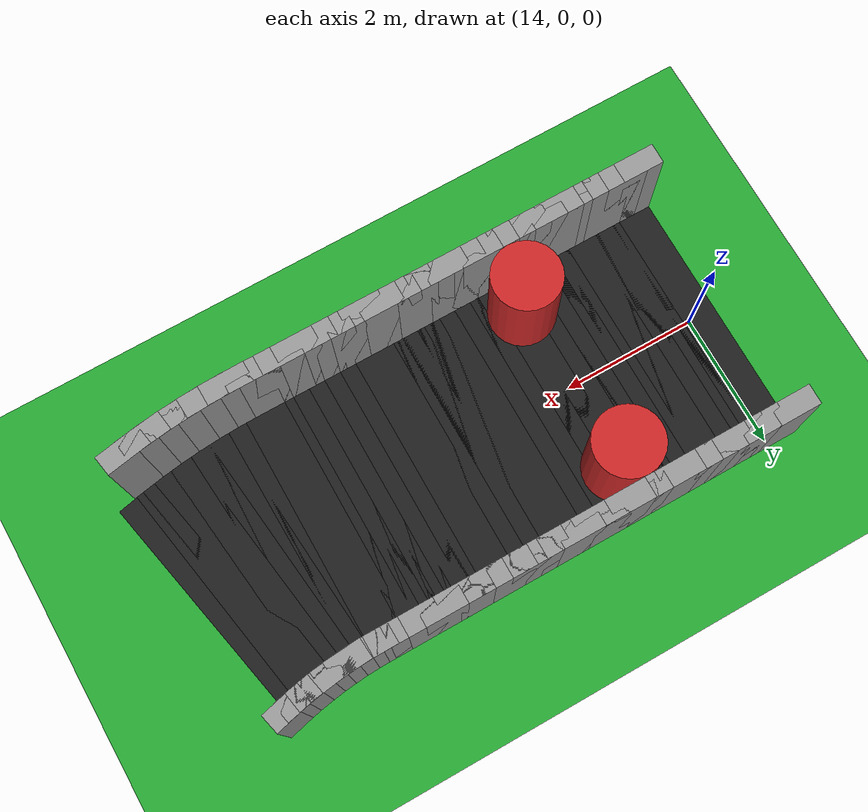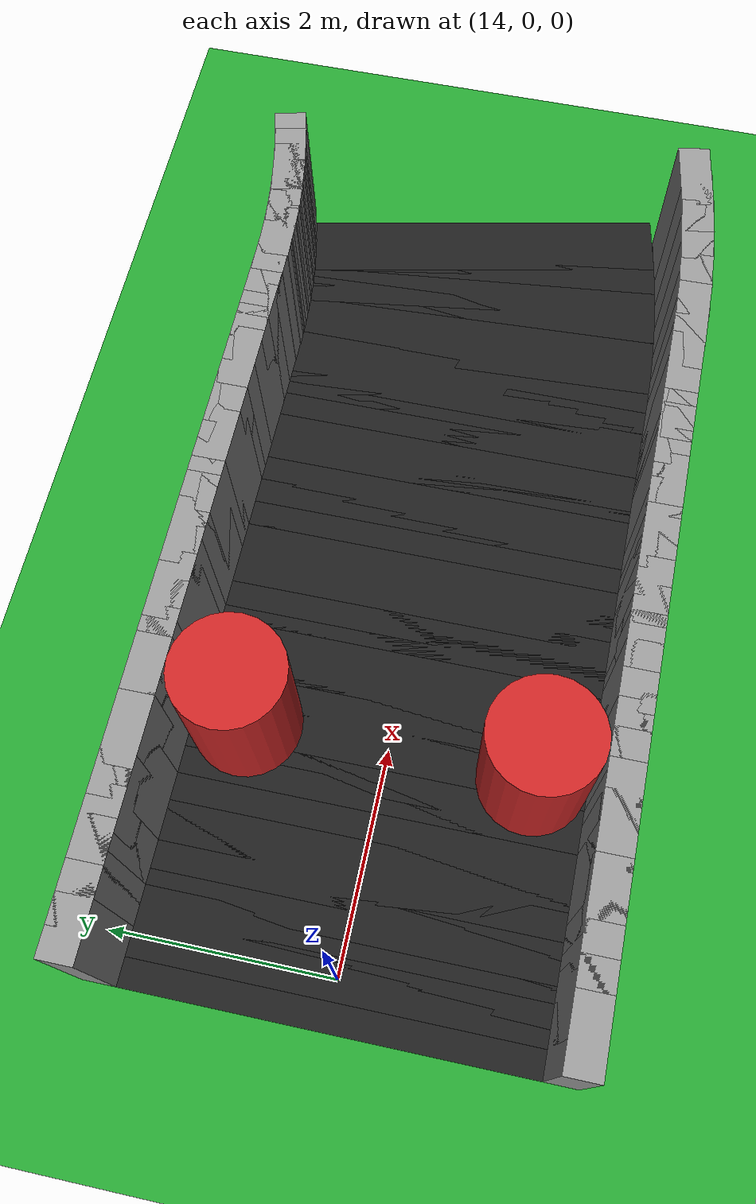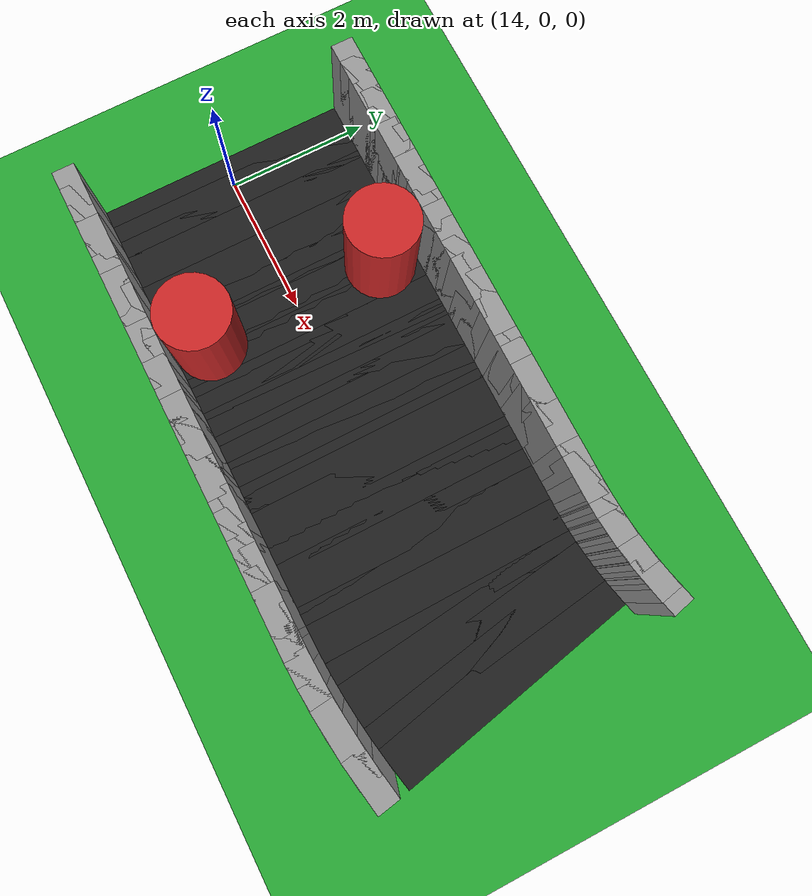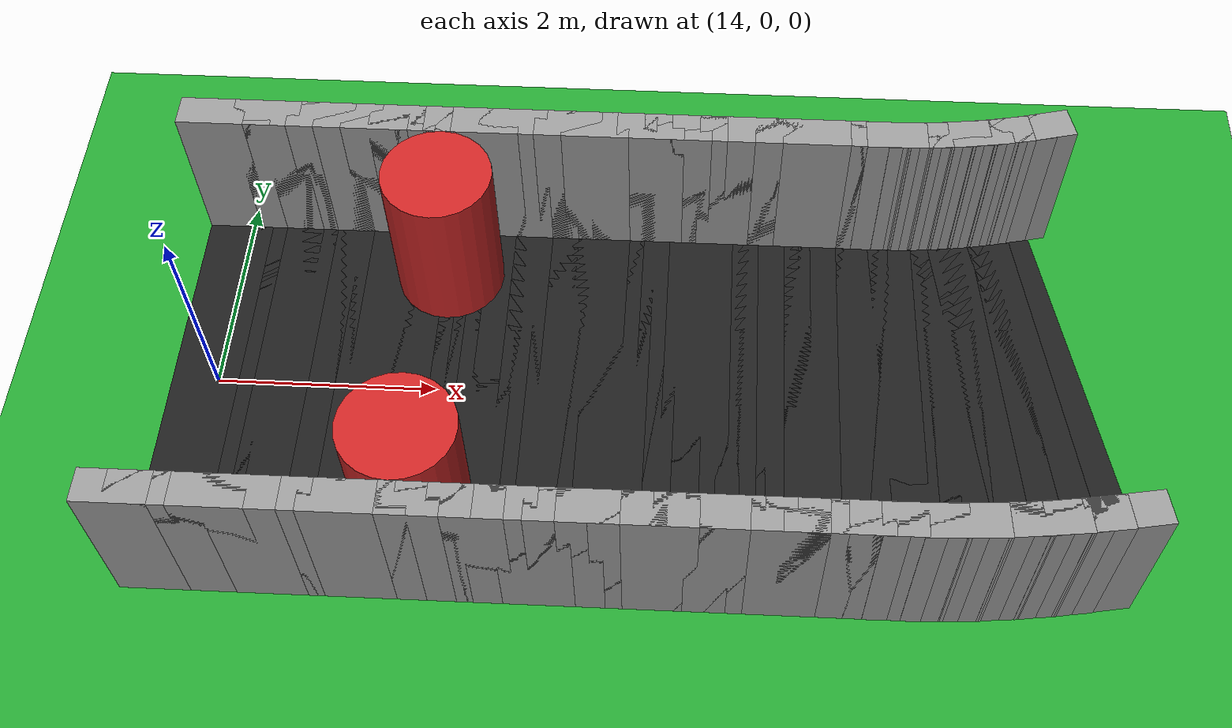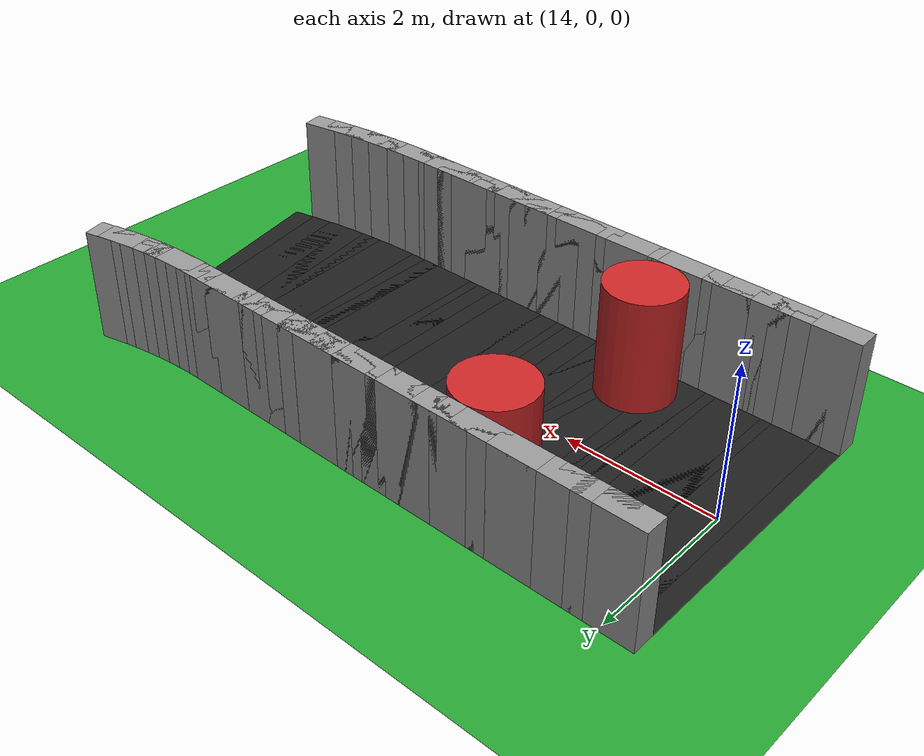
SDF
<sdf version="1.6">
 <world name="obstacle_tight">
  <include><uri>model://sun</uri></include>
  <model name="ground_plane">
   <static>true</static>
   <link name="link">
    <collision name="collision">
     <surface><friction><ode><mu>100</mu><mu2>50</mu2></ode></friction></surface>
     <geometry><plane><normal>0 0 1</normal><size>120 120</size></plane></geometry>
    </collision>
    <visual name="visual">
     <geometry><plane><normal>0 0 1</normal><size>120 120</size></plane></geometry>
     <material>
      <script><uri>file://media/materials/scripts/gazebo.material</uri><name>Gazebo/Green</name></script>
     </material>
    </visual>
   </link>
  </model>
  <model name="asphalt_55">
   <static>true</static>
   <pose>13.875 0.000 0.005 0 0 0.00000</pose>
   <link name="link">
    <visual name="visual">
     <geometry><box><size>0.610 3.600 0.010</size></box></geometry>
     <material>
      <script><uri>file://media/materials/scripts/gazebo.material</uri><name>Gazebo/Black</name></script>
     </material>
    </visual>
   </link>
  </model>
  <model name="curbL_55">
   <static>true</static>
   <pose>13.875 1.950 0.750 0 0 0.00000</pose>
   <link name="link">
    <collision name="collision"><geometry><box><size>0.610 0.300 1.500</size></box></geometry></collision>
    <visual name="visual">
     <geometry><box><size>0.610 0.300 1.500</size></box></geometry>
     <material>
      <script><uri>file://media/materials/scripts/gazebo.material</uri><name>Gazebo/Grey</name></script>
     </material>
    </visual>
   </link>
  </model>
  <model name="curbR_55">
   <static>true</static>
   <pose>13.875 -1.950 0.750 0 0 0.00000</pose>
   <link name="link">
    <collision name="collision"><geometry><box><size>0.610 0.300 1.500</size></box></geometry></collision>
    <visual name="visual">
     <geometry><box><size>0.610 0.300 1.500</size></box></geometry>
     <material>
      <script><uri>file://media/materials/scripts/gazebo.material</uri><name>Gazebo/Grey</name></script>
     </material>
    </visual>
   </link>
  </model>
  <model name="asphalt_56">
   <static>true</static>
   <pose>14.125 0.000 0.005 0 0 0.00000</pose>
   <link name="link">
    <visual name="visual">
     <geometry><box><size>0.610 3.600 0.010</size></box></geometry>
     <material>
      <script><uri>file://media/materials/scripts/gazebo.material</uri><name>Gazebo/Black</name></script>
     </material>
    </visual>
   </link>
  </model>
  <model name="curbL_56">
   <static>true</static>
   <pose>14.125 1.950 0.750 0 0 0.00000</pose>
   <link name="link">
    <collision name="collision"><geometry><box><size>0.610 0.300 1.500</size></box></geometry></collision>
    <visual name="visual">
     <geometry><box><size>0.610 0.300 1.500</size></box></geometry>
     <material>
      <script><uri>file://media/materials/scripts/gazebo.material</uri><name>Gazebo/Grey</name></script>
     </material>
    </visual>
   </link>
  </model>
  <model name="curbR_56">
   <static>true</static>
   <pose>14.125 -1.950 0.750 0 0 0.00000</pose>
   <link name="link">
    <collision name="collision"><geometry><box><size>0.610 0.300 1.500</size></box></geometry></collision>
    <visual name="visual">
     <geometry><box><size>0.610 0.300 1.500</size></box></geometry>
     <material>
      <script><uri>file://media/materials/scripts/gazebo.material</uri><name>Gazebo/Grey</name></script>
     </material>
    </visual>
   </link>
  </model>
  <model name="asphalt_57">
   <static>true</static>
   <pose>14.375 0.000 0.005 0 0 0.00000</pose>
   <link name="link">
    <visual name="visual">
     <geometry><box><size>0.610 3.600 0.010</size></box></geometry>
     <material>
      <script><uri>file://media/materials/scripts/gazebo.material</uri><name>Gazebo/Black</name></script>
     </material>
    </visual>
   </link>
  </model>
  <model name="curbL_57">
   <static>true</static>
   <pose>14.375 1.950 0.750 0 0 0.00000</pose>
   <link name="link">
    <collision name="collision"><geometry><box><size>0.610 0.300 1.500</size></box></geometry></collision>
    <visual name="visual">
     <geometry><box><size>0.610 0.300 1.500</size></box></geometry>
     <material>
      <script><uri>file://media/materials/scripts/gazebo.material</uri><name>Gazebo/Grey</name></script>
     </material>
    </visual>
   </link>
  </model>
  <model name="curbR_57">
   <static>true</static>
   <pose>14.375 -1.950 0.750 0 0 0.00000</pose>
   <link name="link">
    <collision name="collision"><geometry><box><size>0.610 0.300 1.500</size></box></geometry></collision>
    <visual name="visual">
     <geometry><box><size>0.610 0.300 1.500</size></box></geometry>
     <material>
      <script><uri>file://media/materials/scripts/gazebo.material</uri><name>Gazebo/Grey</name></script>
     </material>
    </visual>
   </link>
  </model>
  <model name="asphalt_58">
   <static>true</static>
   <pose>14.625 0.000 0.005 0 0 0.00000</pose>
   <link name="link">
    <visual name="visual">
     <geometry><box><size>0.610 3.600 0.010</size></box></geometry>
     <material>
      <script><uri>file://media/materials/scripts/gazebo.material</uri><name>Gazebo/Black</name></script>
     </material>
    </visual>
   </link>
  </model>
  <model name="curbL_58">
   <static>true</static>
   <pose>14.625 1.950 0.750 0 0 0.00000</pose>
   <link name="link">
    <collision name="collision"><geometry><box><size>0.610 0.300 1.500</size></box></geometry></collision>
    <visual name="visual">
     <geometry><box><size>0.610 0.300 1.500</size></box></geometry>
     <material>
      <script><uri>file://media/materials/scripts/gazebo.material</uri><name>Gazebo/Grey</name></script>
     </material>
    </visual>
   </link>
  </model>
  <model name="curbR_58">
   <static>true</static>
   <pose>14.625 -1.950 0.750 0 0 0.00000</pose>
   <link name="link">
    <collision name="collision"><geometry><box><size>0.610 0.300 1.500</size></box></geometry></collision>
    <visual name="visual">
     <geometry><box><size>0.610 0.300 1.500</size></box></geometry>
     <material>
      <script><uri>file://media/materials/scripts/gazebo.material</uri><name>Gazebo/Grey</name></script>
     </material>
    </visual>
   </link>
  </model>
  <model name="asphalt_59">
   <static>true</static>
   <pose>14.875 0.000 0.005 0 0 0.00000</pose>
   <link name="link">
    <visual name="visual">
     <geometry><box><size>0.610 3.600 0.010</size></box></geometry>
     <material>
      <script><uri>file://media/materials/scripts/gazebo.material</uri><name>Gazebo/Black</name></script>
     </material>
    </visual>
   </link>
  </model>
  <model name="curbL_59">
   <static>true</static>
   <pose>14.875 1.950 0.750 0 0 0.00000</pose>
   <link name="link">
    <collision name="collision"><geometry><box><size>0.610 0.300 1.500</size></box></geometry></collision>
    <visual name="visual">
     <geometry><box><size>0.610 0.300 1.500</size></box></geometry>
     <material>
      <script><uri>file://media/materials/scripts/gazebo.material</uri><name>Gazebo/Grey</name></script>
     </material>
    </visual>
   </link>
  </model>
  <model name="curbR_59">
   <static>true</static>
   <pose>14.875 -1.950 0.750 0 0 0.00000</pose>
   <link name="link">
    <collision name="collision"><geometry><box><size>0.610 0.300 1.500</size></box></geometry></collision>
    <visual name="visual">
     <geometry><box><size>0.610 0.300 1.500</size></box></geometry>
     <material>
      <script><uri>file://media/materials/scripts/gazebo.material</uri><name>Gazebo/Grey</name></script>
     </material>
    </visual>
   </link>
  </model>
  <model name="asphalt_60">
   <static>true</static>
   <pose>15.125 0.000 0.005 0 0 0.00000</pose>
   <link name="link">
    <visual name="visual">
     <geometry><box><size>0.610 3.600 0.010</size></box></geometry>
     <material>
      <script><uri>file://media/materials/scripts/gazebo.material</uri><name>Gazebo/Black</name></script>
     </material>
    </visual>
   </link>
  </model>
  <model name="curbL_60">
   <static>true</static>
   <pose>15.125 1.950 0.750 0 0 0.00000</pose>
   <link name="link">
    <collision name="collision"><geometry><box><size>0.610 0.300 1.500</size></box></geometry></collision>
    <visual name="visual">
     <geometry><box><size>0.610 0.300 1.500</size></box></geometry>
     <material>
      <script><uri>file://media/materials/scripts/gazebo.material</uri><name>Gazebo/Grey</name></script>
     </material>
    </visual>
   </link>
  </model>
  <model name="curbR_60">
   <static>true</static>
   <pose>15.125 -1.950 0.750 0 0 0.00000</pose>
   <link name="link">
    <collision name="collision"><geometry><box><size>0.610 0.300 1.500</size></box></geometry></collision>
    <visual name="visual">
     <geometry><box><size>0.610 0.300 1.500</size></box></geometry>
     <material>
      <script><uri>file://media/materials/scripts/gazebo.material</uri><name>Gazebo/Grey</name></script>
     </material>
    </visual>
   </link>
  </model>
  <model name="asphalt_61">
   <static>true</static>
   <pose>15.375 0.000 0.005 0 0 0.00000</pose>
   <link name="link">
    <visual name="visual">
     <geometry><box><size>0.610 3.600 0.010</size></box></geometry>
     <material>
      <script><uri>file://media/materials/scripts/gazebo.material</uri><name>Gazebo/Black</name></script>
     </material>
    </visual>
   </link>
  </model>
  <model name="curbL_61">
   <static>true</static>
   <pose>15.375 1.950 0.750 0 0 0.00000</pose>
   <link name="link">
    <collision name="collision"><geometry><box><size>0.610 0.300 1.500</size></box></geometry></collision>
    <visual name="visual">
     <geometry><box><size>0.610 0.300 1.500</size></box></geometry>
     <material>
      <script><uri>file://media/materials/scripts/gazebo.material</uri><name>Gazebo/Grey</name></script>
     </material>
    </visual>
   </link>
  </model>
  <model name="curbR_61">
   <static>true</static>
   <pose>15.375 -1.950 0.750 0 0 0.00000</pose>
   <link name="link">
    <collision name="collision"><geometry><box><size>0.610 0.300 1.500</size></box></geometry></collision>
    <visual name="visual">
     <geometry><box><size>0.610 0.300 1.500</size></box></geometry>
     <material>
      <script><uri>file://media/materials/scripts/gazebo.material</uri><name>Gazebo/Grey</name></script>
     </material>
    </visual>
   </link>
  </model>
  <model name="asphalt_62">
   <static>true</static>
   <pose>15.625 0.000 0.005 0 0 0.00000</pose>
   <link name="link">
    <visual name="visual">
     <geometry><box><size>0.610 3.600 0.010</size></box></geometry>
     <material>
      <script><uri>file://media/materials/scripts/gazebo.material</uri><name>Gazebo/Black</name></script>
     </material>
    </visual>
   </link>
  </model>
  <model name="curbL_62">
   <static>true</static>
   <pose>15.625 1.950 0.750 0 0 0.00000</pose>
   <link name="link">
    <collision name="collision"><geometry><box><size>0.610 0.300 1.500</size></box></geometry></collision>
    <visual name="visual">
     <geometry><box><size>0.610 0.300 1.500</size></box></geometry>
     <material>
      <script><uri>file://media/materials/scripts/gazebo.material</uri><name>Gazebo/Grey</name></script>
     </material>
    </visual>
   </link>
  </model>
  <model name="curbR_62">
   <static>true</static>
   <pose>15.625 -1.950 0.750 0 0 0.00000</pose>
   <link name="link">
    <collision name="collision"><geometry><box><size>0.610 0.300 1.500</size></box></geometry></collision>
    <visual name="visual">
     <geometry><box><size>0.610 0.300 1.500</size></box></geometry>
     <material>
      <script><uri>file://media/materials/scripts/gazebo.material</uri><name>Gazebo/Grey</name></script>
     </material>
    </visual>
   </link>
  </model>
  <model name="asphalt_63">
   <static>true</static>
   <pose>15.875 0.000 0.005 0 0 0.00000</pose>
   <link name="link">
    <visual name="visual">
     <geometry><box><size>0.610 3.600 0.010</size></box></geometry>
     <material>
      <script><uri>file://media/materials/scripts/gazebo.material</uri><name>Gazebo/Black</name></script>
     </material>
    </visual>
   </link>
  </model>
  <model name="curbL_63">
   <static>true</static>
   <pose>15.875 1.950 0.750 0 0 0.00000</pose>
   <link name="link">
    <collision name="collision"><geometry><box><size>0.610 0.300 1.500</size></box></geometry></collision>
    <visual name="visual">
     <geometry><box><size>0.610 0.300 1.500</size></box></geometry>
     <material>
      <script><uri>file://media/materials/scripts/gazebo.material</uri><name>Gazebo/Grey</name></script>
     </material>
    </visual>
   </link>
  </model>
  <model name="curbR_63">
   <static>true</static>
   <pose>15.875 -1.950 0.750 0 0 0.00000</pose>
   <link name="link">
    <collision name="collision"><geometry><box><size>0.610 0.300 1.500</size></box></geometry></collision>
    <visual name="visual">
     <geometry><box><size>0.610 0.300 1.500</size></box></geometry>
     <material>
      <script><uri>file://media/materials/scripts/gazebo.material</uri><name>Gazebo/Grey</name></script>
     </material>
    </visual>
   </link>
  </model>
  <model name="asphalt_64">
   <static>true</static>
   <pose>16.125 0.000 0.005 0 0 0.00000</pose>
   <link name="link">
    <visual name="visual">
     <geometry><box><size>0.610 3.600 0.010</size></box></geometry>
     <material>
      <script><uri>file://media/materials/scripts/gazebo.material</uri><name>Gazebo/Black</name></script>
     </material>
    </visual>
   </link>
  </model>
  <model name="curbL_64">
   <static>true</static>
   <pose>16.125 1.950 0.750 0 0 0.00000</pose>
   <link name="link">
    <collision name="collision"><geometry><box><size>0.610 0.300 1.500</size></box></geometry></collision>
    <visual name="visual">
     <geometry><box><size>0.610 0.300 1.500</size></box></geometry>
     <material>
      <script><uri>file://media/materials/scripts/gazebo.material</uri><name>Gazebo/Grey</name></script>
     </material>
    </visual>
   </link>
  </model>
  <model name="curbR_64">
   <static>true</static>
   <pose>16.125 -1.950 0.750 0 0 0.00000</pose>
   <link name="link">
    <collision name="collision"><geometry><box><size>0.610 0.300 1.500</size></box></geometry></collision>
    <visual name="visual">
     <geometry><box><size>0.610 0.300 1.500</size></box></geometry>
     <material>
      <script><uri>file://media/materials/scripts/gazebo.material</uri><name>Gazebo/Grey</name></script>
     </material>
    </visual>
   </link>
  </model>
  <model name="asphalt_65">
   <static>true</static>
   <pose>16.375 0.000 0.005 0 0 0.00000</pose>
   <link name="link">
    <visual name="visual">
     <geometry><box><size>0.610 3.600 0.010</size></box></geometry>
     <material>
      <script><uri>file://media/materials/scripts/gazebo.material</uri><name>Gazebo/Black</name></script>
     </material>
    </visual>
   </link>
  </model>
  <model name="curbL_65">
   <static>true</static>
   <pose>16.375 1.950 0.750 0 0 0.00000</pose>
   <link name="link">
    <collision name="collision"><geometry><box><size>0.610 0.300 1.500</size></box></geometry></collision>
    <visual name="visual">
     <geometry><box><size>0.610 0.300 1.500</size></box></geometry>
     <material>
      <script><uri>file://media/materials/scripts/gazebo.material</uri><name>Gazebo/Grey</name></script>
     </material>
    </visual>
   </link>
  </model>
  <model name="curbR_65">
   <static>true</static>
   <pose>16.375 -1.950 0.750 0 0 0.00000</pose>
   <link name="link">
    <collision name="collision"><geometry><box><size>0.610 0.300 1.500</size></box></geometry></collision>
    <visual name="visual">
     <geometry><box><size>0.610 0.300 1.500</size></box></geometry>
     <material>
      <script><uri>file://media/materials/scripts/gazebo.material</uri><name>Gazebo/Grey</name></script>
     </material>
    </visual>
   </link>
  </model>
  <model name="asphalt_66">
   <static>true</static>
   <pose>16.625 0.000 0.005 0 0 0.00000</pose>
   <link name="link">
    <visual name="visual">
     <geometry><box><size>0.610 3.600 0.010</size></box></geometry>
     <material>
      <script><uri>file://media/materials/scripts/gazebo.material</uri><name>Gazebo/Black</name></script>
     </material>
    </visual>
   </link>
  </model>
  <model name="curbL_66">
   <static>true</static>
   <pose>16.625 1.950 0.750 0 0 0.00000</pose>
   <link name="link">
    <collision name="collision"><geometry><box><size>0.610 0.300 1.500</size></box></geometry></collision>
    <visual name="visual">
     <geometry><box><size>0.610 0.300 1.500</size></box></geometry>
     <material>
      <script><uri>file://media/materials/scripts/gazebo.material</uri><name>Gazebo/Grey</name></script>
     </material>
    </visual>
   </link>
  </model>
  <model name="curbR_66">
   <static>true</static>
   <pose>16.625 -1.950 0.750 0 0 0.00000</pose>
   <link name="link">
    <collision name="collision"><geometry><box><size>0.610 0.300 1.500</size></box></geometry></collision>
    <visual name="visual">
     <geometry><box><size>0.610 0.300 1.500</size></box></geometry>
     <material>
      <script><uri>file://media/materials/scripts/gazebo.material</uri><name>Gazebo/Grey</name></script>
     </material>
    </visual>
   </link>
  </model>
  <model name="asphalt_67">
   <static>true</static>
   <pose>16.875 0.000 0.005 0 0 0.00000</pose>
   <link name="link">
    <visual name="visual">
     <geometry><box><size>0.610 3.600 0.010</size></box></geometry>
     <material>
      <script><uri>file://media/materials/scripts/gazebo.material</uri><name>Gazebo/Black</name></script>
     </material>
    </visual>
   </link>
  </model>
  <model name="curbL_67">
   <static>true</static>
   <pose>16.875 1.950 0.750 0 0 0.00000</pose>
   <link name="link">
    <collision name="collision"><geometry><box><size>0.610 0.300 1.500</size></box></geometry></collision>
    <visual name="visual">
     <geometry><box><size>0.610 0.300 1.500</size></box></geometry>
     <material>
      <script><uri>file://media/materials/scripts/gazebo.material</uri><name>Gazebo/Grey</name></script>
     </material>
    </visual>
   </link>
  </model>
  <model name="curbR_67">
   <static>true</static>
   <pose>16.875 -1.950 0.750 0 0 0.00000</pose>
   <link name="link">
    <collision name="collision"><geometry><box><size>0.610 0.300 1.500</size></box></geometry></collision>
    <visual name="visual">
     <geometry><box><size>0.610 0.300 1.500</size></box></geometry>
     <material>
      <script><uri>file://media/materials/scripts/gazebo.material</uri><name>Gazebo/Grey</name></script>
     </material>
    </visual>
   </link>
  </model>
  <model name="asphalt_68">
   <static>true</static>
   <pose>17.125 0.000 0.005 0 0 0.00000</pose>
   <link name="link">
    <visual name="visual">
     <geometry><box><size>0.610 3.600 0.010</size></box></geometry>
     <material>
      <script><uri>file://media/materials/scripts/gazebo.material</uri><name>Gazebo/Black</name></script>
     </material>
    </visual>
   </link>
  </model>
  <model name="curbL_68">
   <static>true</static>
   <pose>17.125 1.950 0.750 0 0 0.00000</pose>
   <link name="link">
    <collision name="collision"><geometry><box><size>0.610 0.300 1.500</size></box></geometry></collision>
    <visual name="visual">
     <geometry><box><size>0.610 0.300 1.500</size></box></geometry>
     <material>
      <script><uri>file://media/materials/scripts/gazebo.material</uri><name>Gazebo/Grey</name></script>
     </material>
    </visual>
   </link>
  </model>
  <model name="curbR_68">
   <static>true</static>
   <pose>17.125 -1.950 0.750 0 0 0.00000</pose>
   <link name="link">
    <collision name="collision"><geometry><box><size>0.610 0.300 1.500</size></box></geometry></collision>
    <visual name="visual">
     <geometry><box><size>0.610 0.300 1.500</size></box></geometry>
     <material>
      <script><uri>file://media/materials/scripts/gazebo.material</uri><name>Gazebo/Grey</name></script>
     </material>
    </visual>
   </link>
  </model>
  <model name="asphalt_69">
   <static>true</static>
   <pose>17.375 0.000 0.005 0 0 0.00000</pose>
   <link name="link">
    <visual name="visual">
     <geometry><box><size>0.610 3.600 0.010</size></box></geometry>
     <material>
      <script><uri>file://media/materials/scripts/gazebo.material</uri><name>Gazebo/Black</name></script>
     </material>
    </visual>
   </link>
  </model>
  <model name="curbL_69">
   <static>true</static>
   <pose>17.375 1.950 0.750 0 0 0.00000</pose>
   <link name="link">
    <collision name="collision"><geometry><box><size>0.610 0.300 1.500</size></box></geometry></collision>
    <visual name="visual">
     <geometry><box><size>0.610 0.300 1.500</size></box></geometry>
     <material>
      <script><uri>file://media/materials/scripts/gazebo.material</uri><name>Gazebo/Grey</name></script>
     </material>
    </visual>
   </link>
  </model>
  <model name="curbR_69">
   <static>true</static>
   <pose>17.375 -1.950 0.750 0 0 0.00000</pose>
   <link name="link">
    <collision name="collision"><geometry><box><size>0.610 0.300 1.500</size></box></geometry></collision>
    <visual name="visual">
     <geometry><box><size>0.610 0.300 1.500</size></box></geometry>
     <material>
      <script><uri>file://media/materials/scripts/gazebo.material</uri><name>Gazebo/Grey</name></script>
     </material>
    </visual>
   </link>
  </model>
  <model name="asphalt_70">
   <static>true</static>
   <pose>17.625 0.000 0.005 0 0 0.00000</pose>
   <link name="link">
    <visual name="visual">
     <geometry><box><size>0.610 3.600 0.010</size></box></geometry>
     <material>
      <script><uri>file://media/materials/scripts/gazebo.material</uri><name>Gazebo/Black</name></script>
     </material>
    </visual>
   </link>
  </model>
  <model name="curbL_70">
   <static>true</static>
   <pose>17.625 1.950 0.750 0 0 0.00000</pose>
   <link name="link">
    <collision name="collision"><geometry><box><size>0.610 0.300 1.500</size></box></geometry></collision>
    <visual name="visual">
     <geometry><box><size>0.610 0.300 1.500</size></box></geometry>
     <material>
      <script><uri>file://media/materials/scripts/gazebo.material</uri><name>Gazebo/Grey</name></script>
     </material>
    </visual>
   </link>
  </model>
  <model name="curbR_70">
   <static>true</static>
   <pose>17.625 -1.950 0.750 0 0 0.00000</pose>
   <link name="link">
    <collision name="collision"><geometry><box><size>0.610 0.300 1.500</size></box></geometry></collision>
    <visual name="visual">
     <geometry><box><size>0.610 0.300 1.500</size></box></geometry>
     <material>
      <script><uri>file://media/materials/scripts/gazebo.material</uri><name>Gazebo/Grey</name></script>
     </material>
    </visual>
   </link>
  </model>
  <model name="asphalt_71">
   <static>true</static>
   <pose>17.875 0.000 0.005 0 0 0.00000</pose>
   <link name="link">
    <visual name="visual">
     <geometry><box><size>0.610 3.600 0.010</size></box></geometry>
     <material>
      <script><uri>file://media/materials/scripts/gazebo.material</uri><name>Gazebo/Black</name></script>
     </material>
    </visual>
   </link>
  </model>
  <model name="curbL_71">
   <static>true</static>
   <pose>17.875 1.950 0.750 0 0 0.00000</pose>
   <link name="link">
    <collision name="collision"><geometry><box><size>0.610 0.300 1.500</size></box></geometry></collision>
    <visual name="visual">
     <geometry><box><size>0.610 0.300 1.500</size></box></geometry>
     <material>
      <script><uri>file://media/materials/scripts/gazebo.material</uri><name>Gazebo/Grey</name></script>
     </material>
    </visual>
   </link>
  </model>
  <model name="curbR_71">
   <static>true</static>
   <pose>17.875 -1.950 0.750 0 0 0.00000</pose>
   <link name="link">
    <collision name="collision"><geometry><box><size>0.610 0.300 1.500</size></box></geometry></collision>
    <visual name="visual">
     <geometry><box><size>0.610 0.300 1.500</size></box></geometry>
     <material>
      <script><uri>file://media/materials/scripts/gazebo.material</uri><name>Gazebo/Grey</name></script>
     </material>
    </visual>
   </link>
  </model>
  <model name="asphalt_72">
   <static>true</static>
   <pose>18.125 0.000 0.005 0 0 0.00000</pose>
   <link name="link">
    <visual name="visual">
     <geometry><box><size>0.610 3.600 0.010</size></box></geometry>
     <material>
      <script><uri>file://media/materials/scripts/gazebo.material</uri><name>Gazebo/Black</name></script>
     </material>
    </visual>
   </link>
  </model>
  <model name="curbL_72">
   <static>true</static>
   <pose>18.125 1.950 0.750 0 0 0.00000</pose>
   <link name="link">
    <collision name="collision"><geometry><box><size>0.610 0.300 1.500</size></box></geometry></collision>
    <visual name="visual">
     <geometry><box><size>0.610 0.300 1.500</size></box></geometry>
     <material>
      <script><uri>file://media/materials/scripts/gazebo.material</uri><name>Gazebo/Grey</name></script>
     </material>
    </visual>
   </link>
  </model>
  <model name="curbR_72">
   <static>true</static>
   <pose>18.125 -1.950 0.750 0 0 0.00000</pose>
   <link name="link">
    <collision name="collision"><geometry><box><size>0.610 0.300 1.500</size></box></geometry></collision>
    <visual name="visual">
     <geometry><box><size>0.610 0.300 1.500</size></box></geometry>
     <material>
      <script><uri>file://media/materials/scripts/gazebo.material</uri><name>Gazebo/Grey</name></script>
     </material>
    </visual>
   </link>
  </model>
  <model name="asphalt_73">
   <static>true</static>
   <pose>18.375 0.000 0.005 0 0 0.00000</pose>
   <link name="link">
    <visual name="visual">
     <geometry><box><size>0.610 3.600 0.010</size></box></geometry>
     <material>
      <script><uri>file://media/materials/scripts/gazebo.material</uri><name>Gazebo/Black</name></script>
     </material>
    </visual>
   </link>
  </model>
  <model name="curbL_73">
   <static>true</static>
   <pose>18.375 1.950 0.750 0 0 0.00000</pose>
   <link name="link">
    <collision name="collision"><geometry><box><size>0.610 0.300 1.500</size></box></geometry></collision>
    <visual name="visual">
     <geometry><box><size>0.610 0.300 1.500</size></box></geometry>
     <material>
      <script><uri>file://media/materials/scripts/gazebo.material</uri><name>Gazebo/Grey</name></script>
     </material>
    </visual>
   </link>
  </model>
  <model name="curbR_73">
   <static>true</static>
   <pose>18.375 -1.950 0.750 0 0 0.00000</pose>
   <link name="link">
    <collision name="collision"><geometry><box><size>0.610 0.300 1.500</size></box></geometry></collision>
    <visual name="visual">
     <geometry><box><size>0.610 0.300 1.500</size></box></geometry>
     <material>
      <script><uri>file://media/materials/scripts/gazebo.material</uri><name>Gazebo/Grey</name></script>
     </material>
    </visual>
   </link>
  </model>
  <model name="asphalt_74">
   <static>true</static>
   <pose>18.625 0.000 0.005 0 0 0.00000</pose>
   <link name="link">
    <visual name="visual">
     <geometry><box><size>0.610 3.600 0.010</size></box></geometry>
     <material>
      <script><uri>file://media/materials/scripts/gazebo.material</uri><name>Gazebo/Black</name></script>
     </material>
    </visual>
   </link>
  </model>
  <model name="curbL_74">
   <static>true</static>
   <pose>18.625 1.950 0.750 0 0 0.00000</pose>
   <link name="link">
    <collision name="collision"><geometry><box><size>0.610 0.300 1.500</size></box></geometry></collision>
    <visual name="visual">
     <geometry><box><size>0.610 0.300 1.500</size></box></geometry>
     <material>
      <script><uri>file://media/materials/scripts/gazebo.material</uri><name>Gazebo/Grey</name></script>
     </material>
    </visual>
   </link>
  </model>
  <model name="curbR_74">
   <static>true</static>
   <pose>18.625 -1.950 0.750 0 0 0.00000</pose>
   <link name="link">
    <collision name="collision"><geometry><box><size>0.610 0.300 1.500</size></box></geometry></collision>
    <visual name="visual">
     <geometry><box><size>0.610 0.300 1.500</size></box></geometry>
     <material>
      <script><uri>file://media/materials/scripts/gazebo.material</uri><name>Gazebo/Grey</name></script>
     </material>
    </visual>
   </link>
  </model>
  <model name="asphalt_75">
   <static>true</static>
   <pose>18.875 0.000 0.005 0 0 0.00000</pose>
   <link name="link">
    <visual name="visual">
     <geometry><box><size>0.610 3.600 0.010</size></box></geometry>
     <material>
      <script><uri>file://media/materials/scripts/gazebo.material</uri><name>Gazebo/Black</name></script>
     </material>
    </visual>
   </link>
  </model>
  <model name="curbL_75">
   <static>true</static>
   <pose>18.875 1.950 0.750 0 0 0.00000</pose>
   <link name="link">
    <collision name="collision"><geometry><box><size>0.610 0.300 1.500</size></box></geometry></collision>
    <visual name="visual">
     <geometry><box><size>0.610 0.300 1.500</size></box></geometry>
     <material>
      <script><uri>file://media/materials/scripts/gazebo.material</uri><name>Gazebo/Grey</name></script>
     </material>
    </visual>
   </link>
  </model>
  <model name="curbR_75">
   <static>true</static>
   <pose>18.875 -1.950 0.750 0 0 0.00000</pose>
   <link name="link">
    <collision name="collision"><geometry><box><size>0.610 0.300 1.500</size></box></geometry></collision>
    <visual name="visual">
     <geometry><box><size>0.610 0.300 1.500</size></box></geometry>
     <material>
      <script><uri>file://media/materials/scripts/gazebo.material</uri><name>Gazebo/Grey</name></script>
     </material>
    </visual>
   </link>
  </model>
  <model name="asphalt_76">
   <static>true</static>
   <pose>19.125 0.000 0.005 0 0 0.00000</pose>
   <link name="link">
    <visual name="visual">
     <geometry><box><size>0.610 3.600 0.010</size></box></geometry>
     <material>
      <script><uri>file://media/materials/scripts/gazebo.material</uri><name>Gazebo/Black</name></script>
     </material>
    </visual>
   </link>
  </model>
  <model name="curbL_76">
   <static>true</static>
   <pose>19.125 1.950 0.750 0 0 0.00000</pose>
   <link name="link">
    <collision name="collision"><geometry><box><size>0.610 0.300 1.500</size></box></geometry></collision>
    <visual name="visual">
     <geometry><box><size>0.610 0.300 1.500</size></box></geometry>
     <material>
      <script><uri>file://media/materials/scripts/gazebo.material</uri><name>Gazebo/Grey</name></script>
     </material>
    </visual>
   </link>
  </model>
  <model name="curbR_76">
   <static>true</static>
   <pose>19.125 -1.950 0.750 0 0 0.00000</pose>
   <link name="link">
    <collision name="collision"><geometry><box><size>0.610 0.300 1.500</size></box></geometry></collision>
    <visual name="visual">
     <geometry><box><size>0.610 0.300 1.500</size></box></geometry>
     <material>
      <script><uri>file://media/materials/scripts/gazebo.material</uri><name>Gazebo/Grey</name></script>
     </material>
    </visual>
   </link>
  </model>
  <model name="asphalt_77">
   <static>true</static>
   <pose>19.375 0.000 0.005 0 0 0.00000</pose>
   <link name="link">
    <visual name="visual">
     <geometry><box><size>0.610 3.600 0.010</size></box></geometry>
     <material>
      <script><uri>file://media/materials/scripts/gazebo.material</uri><name>Gazebo/Black</name></script>
     </material>
    </visual>
   </link>
  </model>
  <model name="curbL_77">
   <static>true</static>
   <pose>19.375 1.950 0.750 0 0 0.00000</pose>
   <link name="link">
    <collision name="collision"><geometry><box><size>0.610 0.300 1.500</size></box></geometry></collision>
    <visual name="visual">
     <geometry><box><size>0.610 0.300 1.500</size></box></geometry>
     <material>
      <script><uri>file://media/materials/scripts/gazebo.material</uri><name>Gazebo/Grey</name></script>
     </material>
    </visual>
   </link>
  </model>
  <model name="curbR_77">
   <static>true</static>
   <pose>19.375 -1.950 0.750 0 0 0.00000</pose>
   <link name="link">
    <collision name="collision"><geometry><box><size>0.610 0.300 1.500</size></box></geometry></collision>
    <visual name="visual">
     <geometry><box><size>0.610 0.300 1.500</size></box></geometry>
     <material>
      <script><uri>file://media/materials/scripts/gazebo.material</uri><name>Gazebo/Grey</name></script>
     </material>
    </visual>
   </link>
  </model>
  <model name="asphalt_78">
   <static>true</static>
   <pose>19.625 0.000 0.005 0 0 0.00000</pose>
   <link name="link">
    <visual name="visual">
     <geometry><box><size>0.610 3.600 0.010</size></box></geometry>
     <material>
      <script><uri>file://media/materials/scripts/gazebo.material</uri><name>Gazebo/Black</name></script>
     </material>
    </visual>
   </link>
  </model>
  <model name="curbL_78">
   <static>true</static>
   <pose>19.625 1.950 0.750 0 0 0.00000</pose>
   <link name="link">
    <collision name="collision"><geometry><box><size>0.610 0.300 1.500</size></box></geometry></collision>
    <visual name="visual">
     <geometry><box><size>0.610 0.300 1.500</size></box></geometry>
     <material>
      <script><uri>file://media/materials/scripts/gazebo.material</uri><name>Gazebo/Grey</name></script>
     </material>
    </visual>
   </link>
  </model>
  <model name="curbR_78">
   <static>true</static>
   <pose>19.625 -1.950 0.750 0 0 0.00000</pose>
   <link name="link">
    <collision name="collision"><geometry><box><size>0.610 0.300 1.500</size></box></geometry></collision>
    <visual name="visual">
     <geometry><box><size>0.610 0.300 1.500</size></box></geometry>
     <material>
      <script><uri>file://media/materials/scripts/gazebo.material</uri><name>Gazebo/Grey</name></script>
     </material>
    </visual>
   </link>
  </model>
  <model name="asphalt_79">
   <static>true</static>
   <pose>19.875 0.000 0.005 0 0 0.00000</pose>
   <link name="link">
    <visual name="visual">
     <geometry><box><size>0.610 3.600 0.010</size></box></geometry>
     <material>
      <script><uri>file://media/materials/scripts/gazebo.material</uri><name>Gazebo/Black</name></script>
     </material>
    </visual>
   </link>
  </model>
  <model name="curbL_79">
   <static>true</static>
   <pose>19.875 1.950 0.750 0 0 0.00000</pose>
   <link name="link">
    <collision name="collision"><geometry><box><size>0.610 0.300 1.500</size></box></geometry></collision>
    <visual name="visual">
     <geometry><box><size>0.610 0.300 1.500</size></box></geometry>
     <material>
      <script><uri>file://media/materials/scripts/gazebo.material</uri><name>Gazebo/Grey</name></script>
     </material>
    </visual>
   </link>
  </model>
  <model name="curbR_79">
   <static>true</static>
   <pose>19.875 -1.950 0.750 0 0 0.00000</pose>
   <link name="link">
    <collision name="collision"><geometry><box><size>0.610 0.300 1.500</size></box></geometry></collision>
    <visual name="visual">
     <geometry><box><size>0.610 0.300 1.500</size></box></geometry>
     <material>
      <script><uri>file://media/materials/scripts/gazebo.material</uri><name>Gazebo/Grey</name></script>
     </material>
    </visual>
   </link>
  </model>
  <model name="asphalt_80">
   <static>true</static>
   <pose>20.126 0.002 0.005 0 0 0.01571</pose>
   <link name="link">
    <visual name="visual">
     <geometry><box><size>0.611 3.600 0.010</size></box></geometry>
     <material>
      <script><uri>file://media/materials/scripts/gazebo.material</uri><name>Gazebo/Black</name></script>
     </material>
    </visual>
   </link>
  </model>
  <model name="curbL_80">
   <static>true</static>
   <pose>20.095 1.951 0.750 0 0 0.01571</pose>
   <link name="link">
    <collision name="collision"><geometry><box><size>0.550 0.300 1.500</size></box></geometry></collision>
    <visual name="visual">
     <geometry><box><size>0.550 0.300 1.500</size></box></geometry>
     <material>
      <script><uri>file://media/materials/scripts/gazebo.material</uri><name>Gazebo/Grey</name></script>
     </material>
    </visual>
   </link>
  </model>
  <model name="curbR_80">
   <static>true</static>
   <pose>20.156 -1.948 0.750 0 0 0.01571</pose>
   <link name="link">
    <collision name="collision"><geometry><box><size>0.673 0.300 1.500</size></box></geometry></collision>
    <visual name="visual">
     <geometry><box><size>0.673 0.300 1.500</size></box></geometry>
     <material>
      <script><uri>file://media/materials/scripts/gazebo.material</uri><name>Gazebo/Grey</name></script>
     </material>
    </visual>
   </link>
  </model>
  <model name="asphalt_81">
   <static>true</static>
   <pose>20.377 0.010 0.005 0 0 0.04712</pose>
   <link name="link">
    <visual name="visual">
     <geometry><box><size>0.611 3.600 0.010</size></box></geometry>
     <material>
      <script><uri>file://media/materials/scripts/gazebo.material</uri><name>Gazebo/Black</name></script>
     </material>
    </visual>
   </link>
  </model>
  <model name="curbL_81">
   <static>true</static>
   <pose>20.285 1.957 0.750 0 0 0.04712</pose>
   <link name="link">
    <collision name="collision"><geometry><box><size>0.550 0.300 1.500</size></box></geometry></collision>
    <visual name="visual">
     <geometry><box><size>0.550 0.300 1.500</size></box></geometry>
     <material>
      <script><uri>file://media/materials/scripts/gazebo.material</uri><name>Gazebo/Grey</name></script>
     </material>
    </visual>
   </link>
  </model>
  <model name="curbR_81">
   <static>true</static>
   <pose>20.469 -1.938 0.750 0 0 0.04712</pose>
   <link name="link">
    <collision name="collision"><geometry><box><size>0.673 0.300 1.500</size></box></geometry></collision>
    <visual name="visual">
     <geometry><box><size>0.673 0.300 1.500</size></box></geometry>
     <material>
      <script><uri>file://media/materials/scripts/gazebo.material</uri><name>Gazebo/Grey</name></script>
     </material>
    </visual>
   </link>
  </model>
  <model name="asphalt_82">
   <static>true</static>
   <pose>20.628 0.026 0.005 0 0 0.07854</pose>
   <link name="link">
    <visual name="visual">
     <geometry><box><size>0.611 3.600 0.010</size></box></geometry>
     <material>
      <script><uri>file://media/materials/scripts/gazebo.material</uri><name>Gazebo/Black</name></script>
     </material>
    </visual>
   </link>
  </model>
  <model name="curbL_82">
   <static>true</static>
   <pose>20.475 1.969 0.750 0 0 0.07854</pose>
   <link name="link">
    <collision name="collision"><geometry><box><size>0.550 0.300 1.500</size></box></geometry></collision>
    <visual name="visual">
     <geometry><box><size>0.550 0.300 1.500</size></box></geometry>
     <material>
      <script><uri>file://media/materials/scripts/gazebo.material</uri><name>Gazebo/Grey</name></script>
     </material>
    </visual>
   </link>
  </model>
  <model name="curbR_82">
   <static>true</static>
   <pose>20.781 -1.918 0.750 0 0 0.07854</pose>
   <link name="link">
    <collision name="collision"><geometry><box><size>0.673 0.300 1.500</size></box></geometry></collision>
    <visual name="visual">
     <geometry><box><size>0.673 0.300 1.500</size></box></geometry>
     <material>
      <script><uri>file://media/materials/scripts/gazebo.material</uri><name>Gazebo/Grey</name></script>
     </material>
    </visual>
   </link>
  </model>
  <model name="asphalt_83">
   <static>true</static>
   <pose>20.878 0.049 0.005 0 0 0.10996</pose>
   <link name="link">
    <visual name="visual">
     <geometry><box><size>0.611 3.600 0.010</size></box></geometry>
     <material>
      <script><uri>file://media/materials/scripts/gazebo.material</uri><name>Gazebo/Black</name></script>
     </material>
    </visual>
   </link>
  </model>
  <model name="curbL_83">
   <static>true</static>
   <pose>20.664 1.987 0.750 0 0 0.10996</pose>
   <link name="link">
    <collision name="collision"><geometry><box><size>0.550 0.300 1.500</size></box></geometry></collision>
    <visual name="visual">
     <geometry><box><size>0.550 0.300 1.500</size></box></geometry>
     <material>
      <script><uri>file://media/materials/scripts/gazebo.material</uri><name>Gazebo/Grey</name></script>
     </material>
    </visual>
   </link>
  </model>
  <model name="curbR_83">
   <static>true</static>
   <pose>21.092 -1.889 0.750 0 0 0.10996</pose>
   <link name="link">
    <collision name="collision"><geometry><box><size>0.673 0.300 1.500</size></box></geometry></collision>
    <visual name="visual">
     <geometry><box><size>0.673 0.300 1.500</size></box></geometry>
     <material>
      <script><uri>file://media/materials/scripts/gazebo.material</uri><name>Gazebo/Grey</name></script>
     </material>
    </visual>
   </link>
  </model>
  <model name="asphalt_84">
   <static>true</static>
   <pose>21.127 0.081 0.005 0 0 0.14137</pose>
   <link name="link">
    <visual name="visual">
     <geometry><box><size>0.611 3.600 0.010</size></box></geometry>
     <material>
      <script><uri>file://media/materials/scripts/gazebo.material</uri><name>Gazebo/Black</name></script>
     </material>
    </visual>
   </link>
  </model>
  <model name="curbL_84">
   <static>true</static>
   <pose>20.852 2.011 0.750 0 0 0.14137</pose>
   <link name="link">
    <collision name="collision"><geometry><box><size>0.550 0.300 1.500</size></box></geometry></collision>
    <visual name="visual">
     <geometry><box><size>0.550 0.300 1.500</size></box></geometry>
     <material>
      <script><uri>file://media/materials/scripts/gazebo.material</uri><name>Gazebo/Grey</name></script>
     </material>
    </visual>
   </link>
  </model>
  <model name="curbR_84">
   <static>true</static>
   <pose>21.402 -1.850 0.750 0 0 0.14137</pose>
   <link name="link">
    <collision name="collision"><geometry><box><size>0.673 0.300 1.500</size></box></geometry></collision>
    <visual name="visual">
     <geometry><box><size>0.673 0.300 1.500</size></box></geometry>
     <material>
      <script><uri>file://media/materials/scripts/gazebo.material</uri><name>Gazebo/Grey</name></script>
     </material>
    </visual>
   </link>
  </model>
  <model name="asphalt_85">
   <static>true</static>
   <pose>21.375 0.120 0.005 0 0 0.17279</pose>
   <link name="link">
    <visual name="visual">
     <geometry><box><size>0.611 3.600 0.010</size></box></geometry>
     <material>
      <script><uri>file://media/materials/scripts/gazebo.material</uri><name>Gazebo/Black</name></script>
     </material>
    </visual>
   </link>
  </model>
  <model name="curbL_85">
   <static>true</static>
   <pose>21.040 2.041 0.750 0 0 0.17279</pose>
   <link name="link">
    <collision name="collision"><geometry><box><size>0.550 0.300 1.500</size></box></geometry></collision>
    <visual name="visual">
     <geometry><box><size>0.550 0.300 1.500</size></box></geometry>
     <material>
      <script><uri>file://media/materials/scripts/gazebo.material</uri><name>Gazebo/Grey</name></script>
     </material>
    </visual>
   </link>
  </model>
  <model name="curbR_85">
   <static>true</static>
   <pose>21.711 -1.801 0.750 0 0 0.17279</pose>
   <link name="link">
    <collision name="collision"><geometry><box><size>0.673 0.300 1.500</size></box></geometry></collision>
    <visual name="visual">
     <geometry><box><size>0.673 0.300 1.500</size></box></geometry>
     <material>
      <script><uri>file://media/materials/scripts/gazebo.material</uri><name>Gazebo/Grey</name></script>
     </material>
    </visual>
   </link>
  </model>
  <model name="asphalt_86">
   <static>true</static>
   <pose>21.622 0.167 0.005 0 0 0.20420</pose>
   <link name="link">
    <visual name="visual">
     <geometry><box><size>0.611 3.600 0.010</size></box></geometry>
     <material>
      <script><uri>file://media/materials/scripts/gazebo.material</uri><name>Gazebo/Black</name></script>
     </material>
    </visual>
   </link>
  </model>
  <model name="curbL_86">
   <static>true</static>
   <pose>21.227 2.076 0.750 0 0 0.20420</pose>
   <link name="link">
    <collision name="collision"><geometry><box><size>0.550 0.300 1.500</size></box></geometry></collision>
    <visual name="visual">
     <geometry><box><size>0.550 0.300 1.500</size></box></geometry>
     <material>
      <script><uri>file://media/materials/scripts/gazebo.material</uri><name>Gazebo/Grey</name></script>
     </material>
    </visual>
   </link>
  </model>
  <model name="curbL_87">
   <static>true</static>
   <pose>21.412 2.118 0.750 0 0 0.23562</pose>
   <link name="link">
    <collision name="collision"><geometry><box><size>0.550 0.300 1.500</size></box></geometry></collision>
    <visual name="visual">
     <geometry><box><size>0.550 0.300 1.500</size></box></geometry>
     <material>
      <script><uri>file://media/materials/scripts/gazebo.material</uri><name>Gazebo/Grey</name></script>
     </material>
    </visual>
   </link>
  </model>
  <model name="obs_1">
   <static>true</static>
   <pose>16.000 -1.300 0.750 0 0 0</pose>
   <link name="link">
    <collision name="collision">
     <geometry><cylinder><radius>0.500</radius><length>1.500</length></cylinder></geometry>
    </collision>
    <visual name="visual">
     <geometry><cylinder><radius>0.500</radius><length>1.500</length></cylinder></geometry>
     <material>
      <script><uri>file://media/materials/scripts/gazebo.material</uri><name>Gazebo/Red</name></script>
     </material>
    </visual>
   </link>
  </model>
  <model name="obs_2">
   <static>true</static>
   <pose>16.000 1.300 0.750 0 0 0</pose>
   <link name="link">
    <collision name="collision">
     <geometry><cylinder><radius>0.500</radius><length>1.500</length></cylinder></geometry>
    </collision>
    <visual name="visual">
     <geometry><cylinder><radius>0.500</radius><length>1.500</length></cylinder></geometry>
     <material>
      <script><uri>file://media/materials/scripts/gazebo.material</uri><name>Gazebo/Red</name></script>
     </material>
    </visual>
   </link>
  </model>
 </world>
</sdf>
